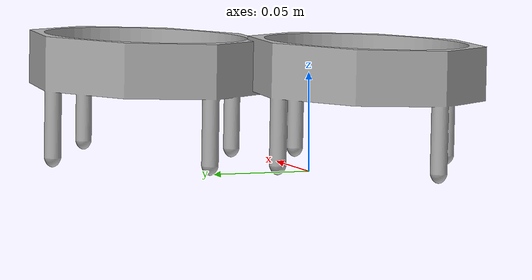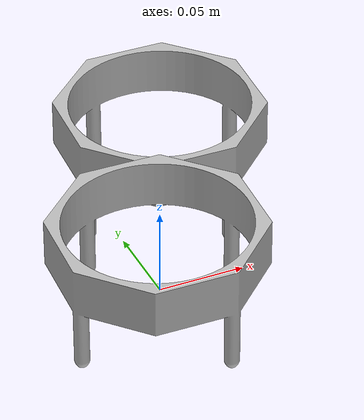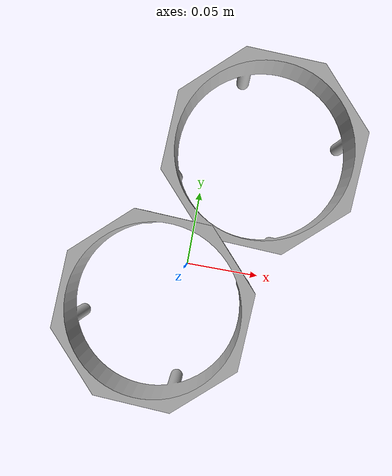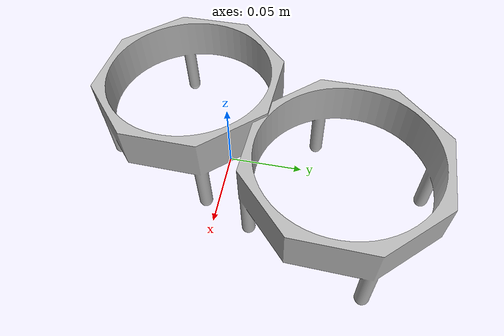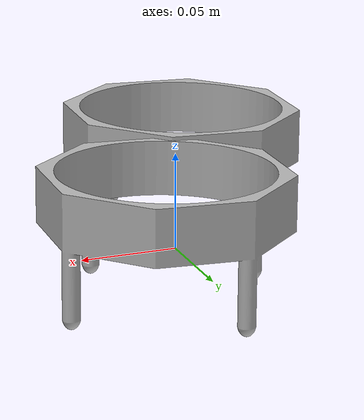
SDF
<?xml version='1.0'?>
<sdf version='1.6'>
  <model name='2'>
      <link name='mountlink_1'>
        <collision name='coll'>
          <pose frame=''>0 0 0 0 -0 0</pose>
          <geometry>
            <mesh>
              <uri>model://mount/meshes/mount_collision.dae</uri>
            </mesh>
          </geometry>
        </collision>
	   <sensor name='contactSensor' type='contact'>
	   <plugin name="bumpSensor" filename="libbumpSensor.so"> </plugin>
	      <contact>
		    <collision>coll1</collision>
	      </contact>
	   </sensor>
        <inertial>
          <pose frame=''>0 0 0 0 -0 0</pose>
          <inertia>
          <ixx>0.00055873</ixx>
          <ixy>0.0000</ixy>
          <ixz>0.00000</ixz>
          <iyy>0.00055873</iyy>
          <iyz>0.00000/iyz></iyz>
          <izz>0.0010789</izz>
          </inertia>
          <mass>0.028</mass>
        </inertial>
        <visual name='mountvisual1'>
          <pose frame=''>0 0 0 0 -0 0</pose>
          <geometry>
            <mesh>
              <uri>model://mount/meshes/mount.dae</uri>
            </mesh>
          </geometry>
        </visual>
		<pose frame=''>-0.012243 -0.025526 0 0 -0 0</pose>
      </link>
      <link name='mountlink_2'>
        <collision name='coll2'>
          <pose frame=''>0 0 0 0 -0 0</pose>
          <geometry>
            <mesh>
              <uri>model://mount/meshes/mount_collision.dae</uri>
            </mesh>
          </geometry>
        </collision>
	   <sensor name='contactSensor' type='contact'>
	   <plugin name="bumpSensor" filename="libbumpSensor.so"> </plugin>
	      <contact>
		    <collision>coll</collision>
	      </contact>
	   </sensor>
        <inertial>
          <pose frame=''>0 0 0 0 -0 0</pose>
          <inertia>
          <ixx>0.00055873</ixx>
          <ixy>0.0000</ixy>
          <ixz>0.00000</ixz>
          <iyy>0.00055873</iyy>
          <iyz>0.00000/iyz></iyz>
          <izz>0.0010789</izz>
          </inertia>
          <mass>0.028</mass>
        </inertial>
        <visual name='mountvisual2'>
          <pose frame=''>0 0 0 0 -0 0</pose>
          <geometry>
            <mesh>
              <uri>model://mount/meshes/mount.dae</uri>
            </mesh>
          </geometry>
        </visual>
		 <pose frame=''>0.03438 0.076098 0.0025 0 -0 0</pose>
      </link>
    <joint name='mountlink_JOINT_3' type='fixed'>
      <parent>mountlink_1</parent>
      <child>mountlink_2</child>
      <pose frame=''>0 0 0 0 -0 0</pose>
      <physics>
        <ode>
          <limit>
            <cfm>0</cfm>
            <erp>0.2</erp>
          </limit>
          <suspension>
            <cfm>0</cfm>
            <erp>0.2</erp>
          </suspension>
        </ode>
      </physics>
    </joint>
    <static>0</static>
    <allow_auto_disable>1</allow_auto_disable>
  </model>
</sdf>
